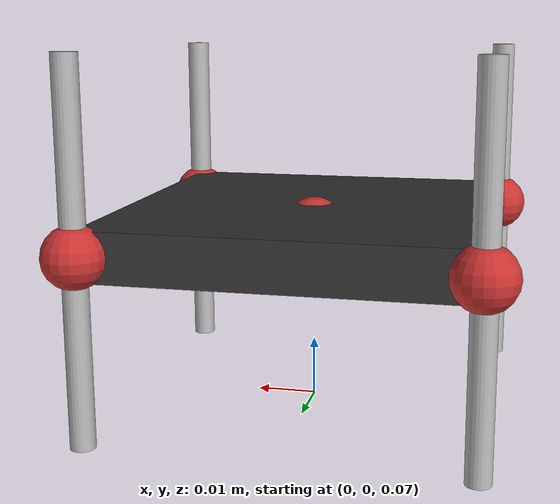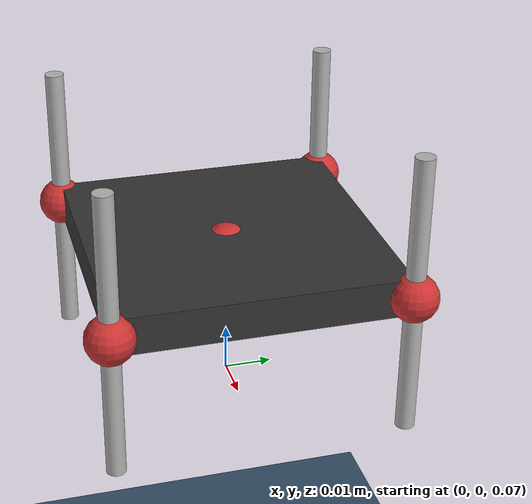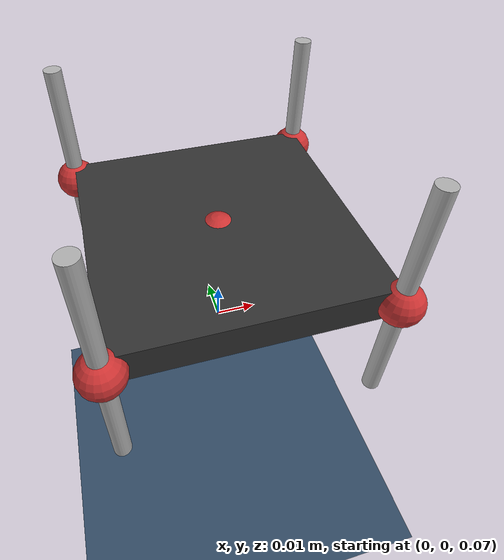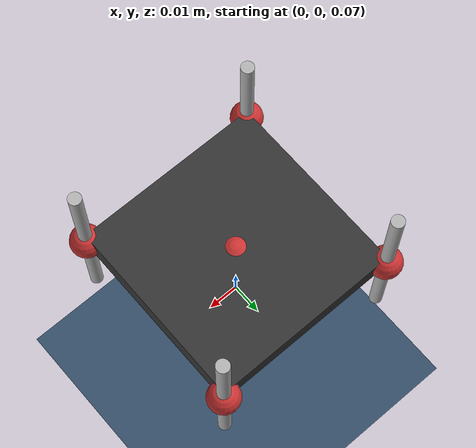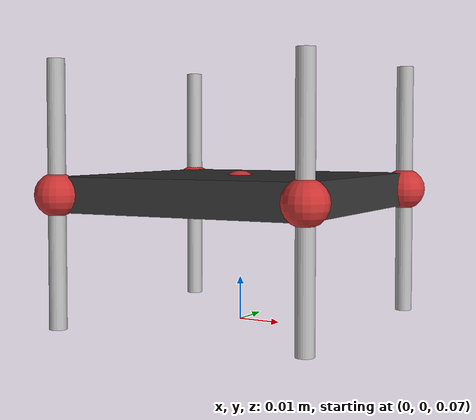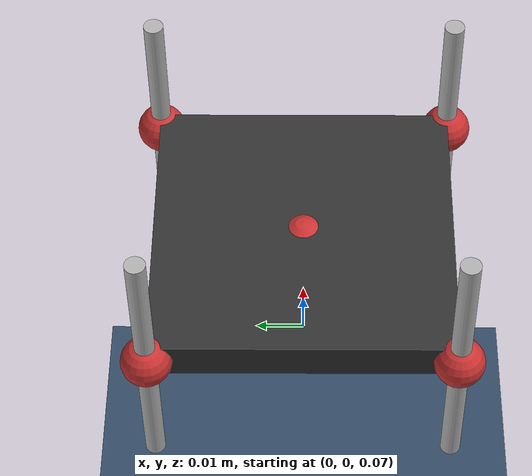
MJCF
<?xml version="1.0" encoding="utf-8"?>
<mujoco model="crazyflie_minimal">
  <compiler angle="radian" coordinate="local" inertiafromgeom="true" />

  <option timestep="0.01" integrator="RK4" gravity="0 0 -9.81" density="1.293" viscosity="1.85e-5" />

  <default>
    <joint damping="0.001" armature="0.001" />
    <motor ctrlrange="0 1" ctrllimited="true" />
    <site size="0.005" rgba="0.8 0.2 0.2 1" />
  </default>

  <asset>
    <mesh name="arm" file="meshes/arm.stl" scale="1 1 1" />
    <mesh name="motor" file="meshes/motor.stl" scale="1 1 1" />
    <material name="body" rgba="0.2 0.2 0.2 1" />
    <material name="arm" rgba="0.7 0.7 0.7 1" />
    <material name="rotor" rgba="0.8 0.8 0.8 1" />
  </asset>

  <worldbody>
    <light directional="true" diffuse="0.6 0.6 0.6" specular="0.2 0.2 0.2" pos="0 0 3" dir="0 0 -1" />
    <geom name="floor" type="plane" pos="0 0 0" size="5 5 0.1" rgba="0.2 0.3 0.4 1" />

    <body name="quadcopter" pos="0 0 0.1">
      <joint name="root_x" type="slide" axis="1 0 0" pos="0 0 0" />
      <joint name="root_y" type="slide" axis="0 1 0" pos="0 0 0" />
      <joint name="root_z" type="slide" axis="0 0 1" pos="0 0 0" />
      <joint name="root_rotx" type="hinge" axis="1 0 0" pos="0 0 0" />
      <joint name="root_roty" type="hinge" axis="0 1 0" pos="0 0 0" />
      <joint name="root_rotz" type="hinge" axis="0 0 1" pos="0 0 0" />

      <!-- Central body -->
      <geom type="box" size="0.03 0.03 0.004" material="body" mass="0.025" />

      <!-- Arms -->
      <body name="arm1" pos="0.03 0.03 0">
        <geom type="cylinder" size="0.002 0.03" pos="0 0 0" quat="0.924 0 0 0.383" material="arm" mass="0.001" />
        <site name="motor1" pos="0 0 0" />
      </body>
      <body name="arm2" pos="-0.03 0.03 0">
        <geom type="cylinder" size="0.002 0.03" pos="0 0 0" quat="0.383 0 0 0.924" material="arm" mass="0.001" />
        <site name="motor2" pos="0 0 0" />
      </body>
      <body name="arm3" pos="-0.03 -0.03 0">
        <geom type="cylinder" size="0.002 0.03" pos="0 0 0" quat="0.924 0 0 -0.383" material="arm" mass="0.001" />
        <site name="motor3" pos="0 0 0" />
      </body>
      <body name="arm4" pos="0.03 -0.03 0">
        <geom type="cylinder" size="0.002 0.03" pos="0 0 0" quat="0.383 0 0 -0.924" material="arm" mass="0.001" />
        <site name="motor4" pos="0 0 0" />
      </body>

      <!-- Sensors -->
      <site name="imu" pos="0 0 0" />
    </body>
  </worldbody>

  <actuator>
    <motor name="motor1" site="motor1" gear="0.1 0 0 0 0 1" />
    <motor name="motor2" site="motor2" gear="0.1 0 0 0 0 -1" />
    <motor name="motor3" site="motor3" gear="0.1 0 0 0 0 1" />
    <motor name="motor4" site="motor4" gear="0.1 0 0 0 0 -1" />
  </actuator>

  <sensor>
    <accelerometer name="accelerometer" site="imu" />
    <gyro name="gyro" site="imu" />
    <velocimeter name="velocimeter" site="imu" />
  </sensor>
</mujoco>
